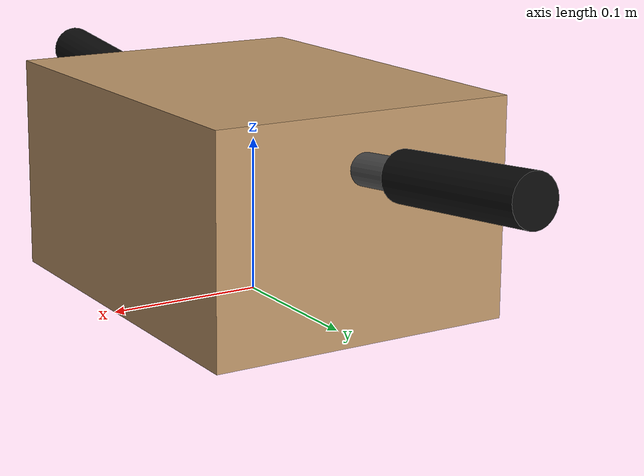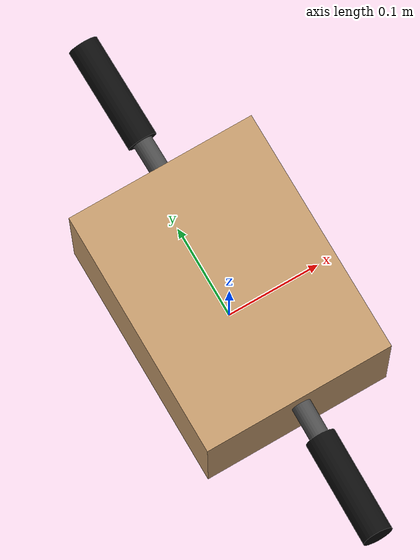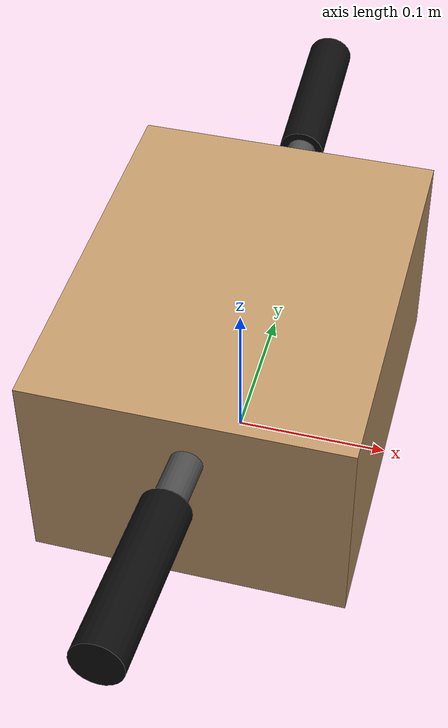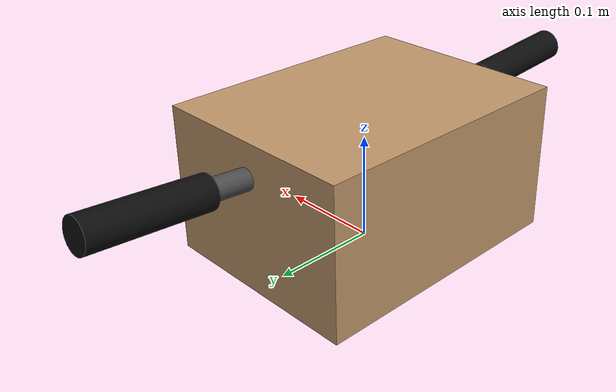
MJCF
<!-- GENERATED by manip/build_handle_scene.py from manip/handle_box.yaml. Box frame = box centre; handles in that frame. -->
<mujoco model="handle_box">
  <worldbody>
    <body name="box" pos="0 0 0.07">
      <freejoint name="box_free" />
      <geom name="box_geom" type="box" size="0.1 0.13 0.07" mass="0.07" contype="32" conaffinity="17" condim="3" friction="0.5 0.005 0.0001" rgba="0.76 0.6 0.42 1" />
      <geom name="left_standoff" type="cylinder" fromto="0.0022 0.13 0.0367 0.0013145 0.16704 0.040072" size="0.01" mass="0.005" contype="32" conaffinity="17" rgba="0.3 0.3 0.3 1" />
      <geom name="left_handle" type="cylinder" fromto="0.0013145 0.16704 0.040072 -0.0013145 0.27656 0.049928" size="0.0155" mass="0.01" contype="32" conaffinity="17" condim="4" friction="1.0 0.01 0.0001" rgba="0.05 0.05 0.05 1" />
      <site name="left_handle_site" pos="0 0.2218 0.045" size="0.006" rgba="0 1 0 1" />
      <geom name="right_standoff" type="cylinder" fromto="0.0022 -0.13 0.0367 0.0013145 -0.16704 0.040072" size="0.01" mass="0.005" contype="32" conaffinity="17" rgba="0.3 0.3 0.3 1" />
      <geom name="right_handle" type="cylinder" fromto="0.0013145 -0.16704 0.040072 -0.0013145 -0.27656 0.049928" size="0.0155" mass="0.01" contype="32" conaffinity="17" condim="4" friction="1.0 0.01 0.0001" rgba="0.05 0.05 0.05 1" />
      <site name="right_handle_site" pos="0 -0.2218 0.045" size="0.006" rgba="0 1 0 1" />
    </body>
  </worldbody>
</mujoco>
